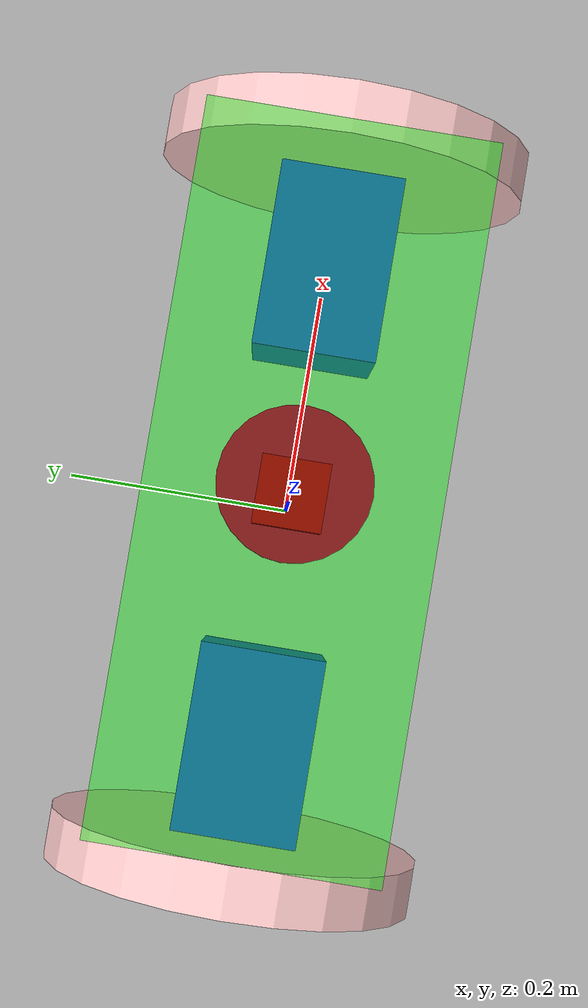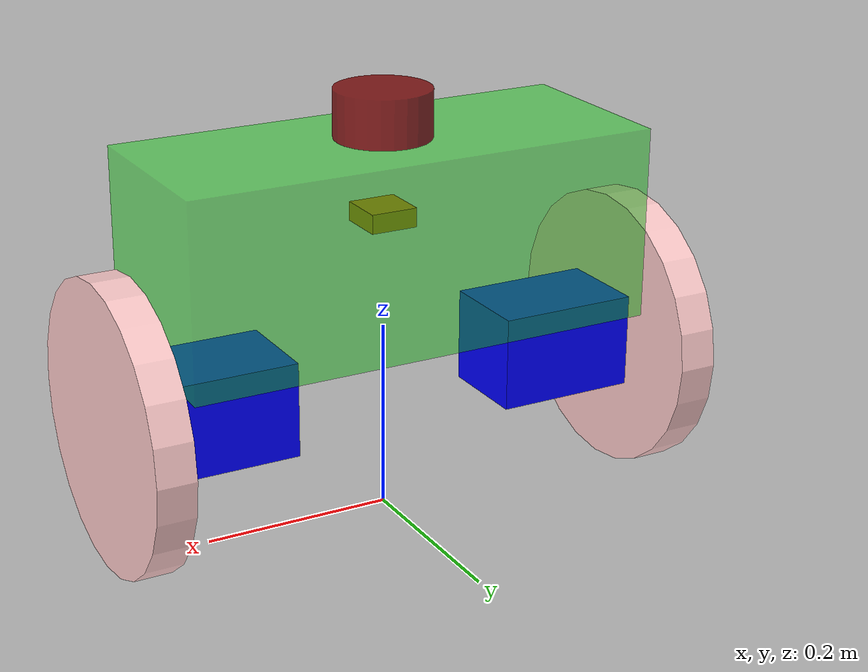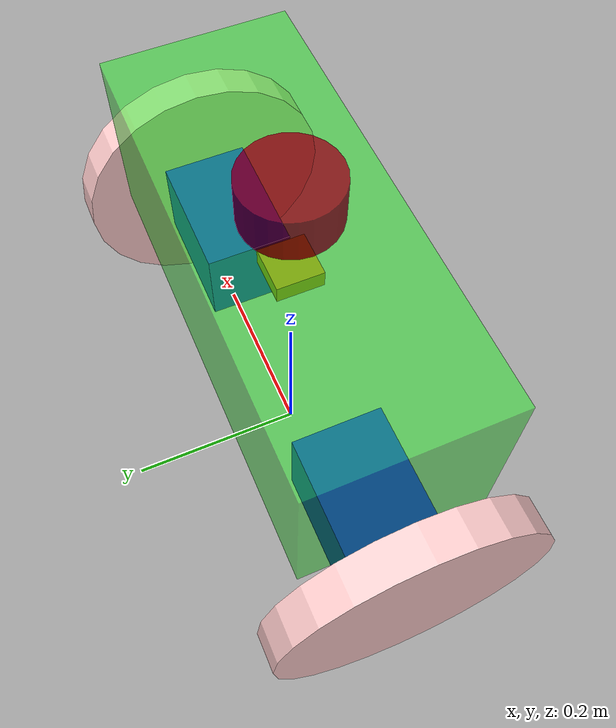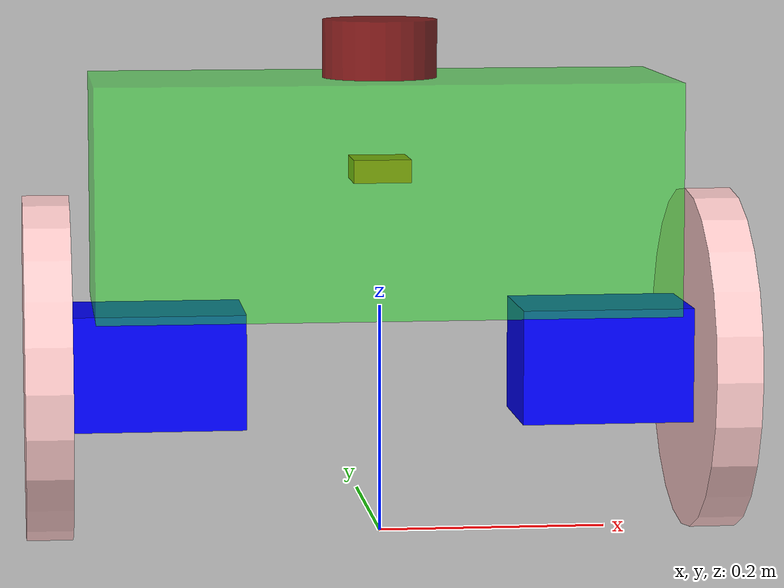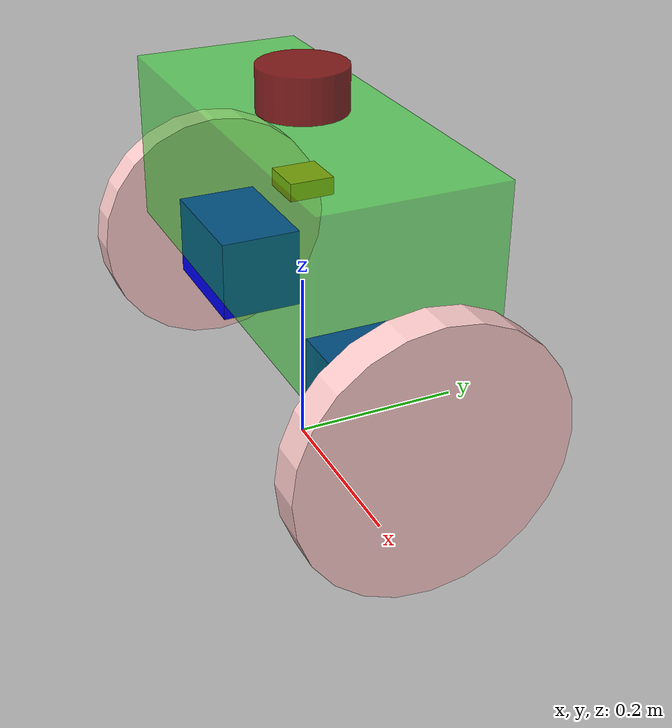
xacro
<?xml version="1.0"?>
<robot xmlns:xacro="http://www.ros.org/wiki/xacro" >
    <link name="ground_link">

    </link>

    <joint name="ground_joint" type="fixed">
        <parent link="ground_link"/>
        <child link="chassis_link"/>
        <origin xyz="0.0 0.0 0.3"/>

    </joint>

  <!-- chassis_link -->
  <link name="chassis_link">
      <visual>
      <origin xyz="0 0 0.0" rpy="0 0 0"/>
      <geometry>
        <box size="0.5 0.2 0.2"/>
      </geometry>
      <material name="red">
        <color rgba="0.1 0.9 0.1 0.5"/>
      </material>
    </visual>
    <collision>
      <origin xyz="0.0 0.0 0.0" rpy="0.0 0.0 0.0"/>
      <geometry>
        <box size="0.5 0.2 0.2"/>
      </geometry>
      <material name="">
        <color rgba=" 0.1 0.9 0.1 0.5"/>
      </material>
    </collision>
    <inertial>
      <origin xyz="0.0 0.0 0.0" rpy="0.0 0.0 0.0"/>
      <mass value="5.0"/>
      <inertia ixx="0.125" ixy="0.0" ixz="0.0" iyy="0.2083" iyz="0.0" izz="0.2917"/>
    </inertial>

  </link>

  <!-- laser link -->
  <link name="laser_link">
      <visual>
      <origin xyz="0 0 0" rpy="0 0 0"/>
      <geometry>
        <cylinder length="0.05" radius="0.05"/>
      </geometry>
      <material name="black">
          <color rgba="0.5 0.0 0.0 0.8" />
      </material>
    </visual>
    <collision>
        <origin xyz="0.0 0.0 0.0" rpy="0.0 0.0 0.0"/>
        <geometry>
        <cylinder length="0.05" radius="0.05"/>
      </geometry>
      <material name="black">
          <color rgba="0.5 0.0 0.0 0.8" />
      </material>
    </collision>
    <inertial>
        <origin xyz="0.0 0.0 0.0" rpy="0.0 0.0 0.0"/>
        <mass value="0.5"/>
        <inertia ixx="0.0002604167" ixy="0.0" ixz="0.0" iyy="0.0002604167" iyz="0.0" izz="0.0001041667"/>
    </inertial>

  </link>

  <!-- laser joint -->
    <joint name="laser_joint" type="fixed">
        <parent link="chassis_link" />
        <child link="laser_link" />
        <origin xyz="0 0 0.125" />
    </joint>

    <!-- right_motor_link -->
    <link name="right_motor_link">
        <visual>
            <origin xyz="0.0 0.0 0.0" rpy="0.0 0.0 0.0"/>
            <geometry>
                <box size="0.15 0.1 0.1"/>
            </geometry>
            <material name="">
                <color rgba="0.0 0.0 1.0 1.0"/>
                <texture filename=""/>
            </material>
        </visual>
        <collision>
          <origin xyz="0.0 0.0 0.0" rpy="0.0 0.0 0.0"/>
          <geometry>
            <box size="0.15 0.1 0.1"/>
          </geometry>
          <material name="">
            <color rgba="0.0 0.0 1.0 1.0"/>
          </material>
        </collision>
        <inertial>
          <origin xyz="0.0 0.0 0.0" rpy="0.0 0.0 0.0"/>
          <mass value="1.0"/>
          <inertia ixx="0.001" ixy="0.0" ixz="0.0" iyy="0.001125" iyz="0.0" izz="0.001125"/>
        </inertial>
    </link>

    <joint name="right_motor_joint" type="fixed">
        <parent link="chassis_link"/>
        <child link="right_motor_link"/>
        <origin xyz="0.195 0.0 -0.15"/>
    </joint>

    <!-- left_motor_link -->
    <link name="left_motor_link">
        <visual>
            <origin xyz="0.0 0.0 0.0" rpy="0.0 0.0 0.0"/>
            <geometry>
                <box size="0.15 0.1 0.1"/>
            </geometry>
            <material name="">
                <color rgba="0.0 0.0 1.0 1.0"/>
                <texture filename=""/>
            </material>
        </visual>
        <collision>
          <origin xyz="0.0 0.0 0.0" rpy="0.0 0.0 0.0"/>
          <geometry>
            <box size="0.15 0.1 0.1"/>
          </geometry>
          <material name="">
            <color rgba="0.0 0.0 1.0 1.0"/>
          </material>
        </collision>
        <inertial>
          <origin xyz="0.0 0.0 0.0" rpy="0.0 0.0 0.0"/>
          <mass value="1.0"/>
          <inertia ixx="0.001" ixy="0.0" ixz="0.0" iyy="0.001125" iyz="0.0" izz="0.001125"/>
        </inertial>
    </link>

    <joint name="left_motor_joint" type="fixed">
        <parent link="chassis_link"/>
        <child link="left_motor_link"/>
        <origin xyz="-0.195 0.0 -0.15"/>
    </joint>

      <link name="imu_link">
      <visual>
      <origin xyz="0 0 0.0" rpy="0 0 0"/>
      <geometry>
            <box size="0.05 0.05 0.02"/>
      </geometry>
    </visual>
  </link>

  <!-- imu joint -->
  <joint name="imu_joint" type="fixed">
      <parent link="chassis_link" />
      <child link="imu_link" />
      <origin xyz="0 0 0.02" />
  </joint>

    <link name="right_wheel_link">
      <visual>
        <origin xyz="0 0 0" rpy="0 1.57079 0"/>
        <geometry>
          <cylinder length="0.04" radius="0.15"/>
        </geometry>
          <material name="">
            <color rgba="1.0 0.8 0.8 1.0" />
          </material>
      </visual>
      <collision>
        <origin xyz="0.0 0.0 0.0" rpy="0.0 1.57079 0.0"/>
        <geometry>
          <cylinder length="0.04" radius="0.15"/>
        </geometry>
          <material name="">
            <color rgba="1.0 0.8 0.8 1.0" />
          </material>
      </collision>
      <inertial>
        <origin xyz="0.0 0.0 0.0" rpy="0.0 1.57079 0.0"/>
        <mass value="0.5"/>
        <inertia ixx="0.00235" ixy="0.0" ixz="0.0" iyy="0.00235" iyz="0.0" izz="0.00028125"/>
      </inertial>

  </link>

  <joint name="right_wheel_joint" type="continuous">
      <parent link="right_motor_link" />
      <child link="right_wheel_link" />
      <origin xyz="0.095 0.0 0.0" />
      <axis xyz="1 0 0" />
  </joint>

  <link name="left_wheel_link">
      <visual>
        <origin xyz="0 0 0" rpy="0 -1.57079 0"/>
        <geometry>
          <cylinder length="0.04" radius="0.15"/>
        </geometry>
          <material name="">
            <color rgba="1.0 0.8 0.8 1.0" />
          </material>
      </visual>
      <collision>
        <origin xyz="0.0 0.0 0.0" rpy="0.0 -1.57079 0.0"/>
        <geometry>
          <cylinder length="0.04" radius="0.15"/>
        </geometry>
          <material name="">
            <color rgba="1.0 0.8 0.8 1.0" />
          </material>
      </collision>
      <inertial>
        <origin xyz="0.0 0.0 0.0" rpy="0.0 -1.57079 0.0"/>
        <mass value="0.5"/>
        <inertia ixx="0.00235" ixy="0.0" ixz="0.0" iyy="0.00235" iyz="0.0" izz="0.00028125"/>
      </inertial>
  </link>

  <joint name="left_wheel_joint" type="continuous">
      <parent link="left_motor_link" />
      <child link="left_wheel_link" />
      <origin xyz="-0.095 0.0 0.0" />
      <axis xyz="1 0 0" />
  </joint>

    <gazebo reference = "left_motor_link">
        <material>
            Gazebo/Blue
        </material>
    </gazebo>
    <gazebo reference = "right_motor_link">
        <material>
            Gazebo/Blue
        </material>
    </gazebo>
    <gazebo reference = "chassis_link">
        <material>
            Gazebo/Green
        </material>
    </gazebo>
    <gazebo reference = "laser_link">
        <material>
            Gazebo/Red
        </material>
    </gazebo>

    <gazebo reference="imu_link">
      <sensor name="imu_sensor" type="imu">
      <plugin filename="libgazebo_ros_imu_sensor.so" name="imu_plugin">
          <ros>
            <namespace>/</namespace>
            <remapping>~/out:=imu</remapping>
          </ros>
          <initial_orientation_as_reference>false</initial_orientation_as_reference>
        </plugin>
        <always_on>true</always_on>
        <update_rate>100</update_rate>
        <visualize>true</visualize>
        <imu>
          <angular_velocity>
            <x>
              <noise type="gaussian">
                <mean>0.0</mean>
                <stddev>2e-4</stddev>
                <bias_mean>0.0000075</bias_mean>
                <bias_stddev>0.0000008</bias_stddev>
              </noise>
            </x>
            <y>
              <noise type="gaussian">
                <mean>0.0</mean>
                <stddev>2e-4</stddev>
                <bias_mean>0.0000075</bias_mean>
                <bias_stddev>0.0000008</bias_stddev>
              </noise>
            </y>
            <z>
              <noise type="gaussian">
                <mean>0.0</mean>
                <stddev>2e-4</stddev>
                <bias_mean>0.0000075</bias_mean>
                <bias_stddev>0.0000008</bias_stddev>
              </noise>
            </z>
          </angular_velocity>
          <linear_acceleration>
            <x>
              <noise type="gaussian">
                <mean>0.0</mean>
                <stddev>1.7e-2</stddev>
                <bias_mean>0.1</bias_mean>
                <bias_stddev>0.001</bias_stddev>
              </noise>
            </x>
            <y>
              <noise type="gaussian">
                <mean>0.0</mean>
                <stddev>1.7e-2</stddev>
                <bias_mean>0.1</bias_mean>
                <bias_stddev>0.001</bias_stddev>
              </noise>
            </y>
            <z>
              <noise type="gaussian">
                <mean>0.0</mean>
                <stddev>1.7e-2</stddev>
                <bias_mean>0.1</bias_mean>
                <bias_stddev>0.001</bias_stddev>
              </noise>
            </z>
          </linear_acceleration>
        </imu>
      </sensor>
    </gazebo>

      <gazebo reference="laser_link">
      <sensor name="laser_sensor" type="ray">
      <always_on>true</always_on>
      <visualize>true</visualize>
      <update_rate>5</update_rate>
      <pose>0 0 0.125 0 0 0</pose>
      <ray>
          <scan>
            <horizontal>
              <samples>360</samples>
              <resolution>1.000000</resolution>
              <min_angle>0.000000</min_angle>
              <max_angle>6.280000</max_angle>
            </horizontal>
          </scan>
          <range>
            <min>0.120000</min>
            <max>3.5</max>
            <resolution>0.015000</resolution>
          </range>
          <noise>
            <type>gaussian</type>
            <mean>0.0</mean>
            <stddev>0.01</stddev>
          </noise>
      </ray>

      <plugin name="laserscan" filename="libgazebo_ros_ray_sensor.so">
        <ros>
          <remapping>~/out:=scan</remapping>
        </ros>
        <output_type>sensor_msgs/LaserScan</output_type>
        <frame_name>laser_link</frame_name>
      </plugin>
      </sensor>
    </gazebo>

</robot>
